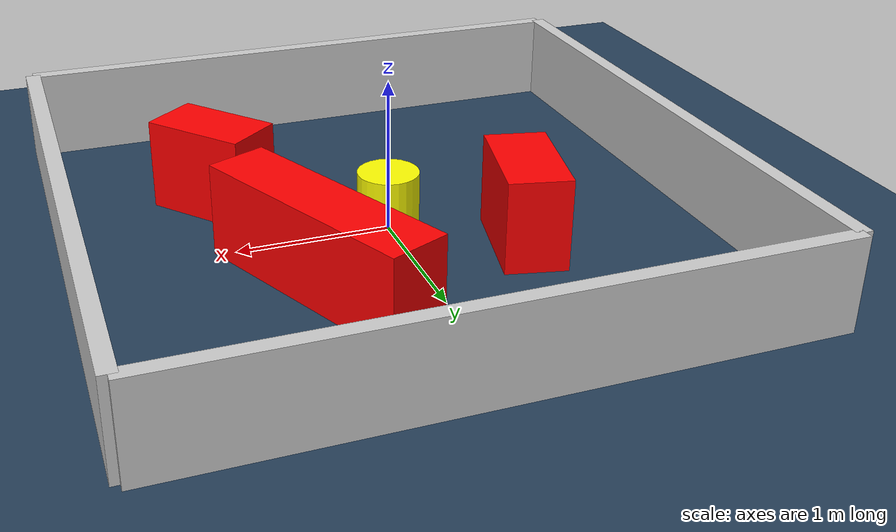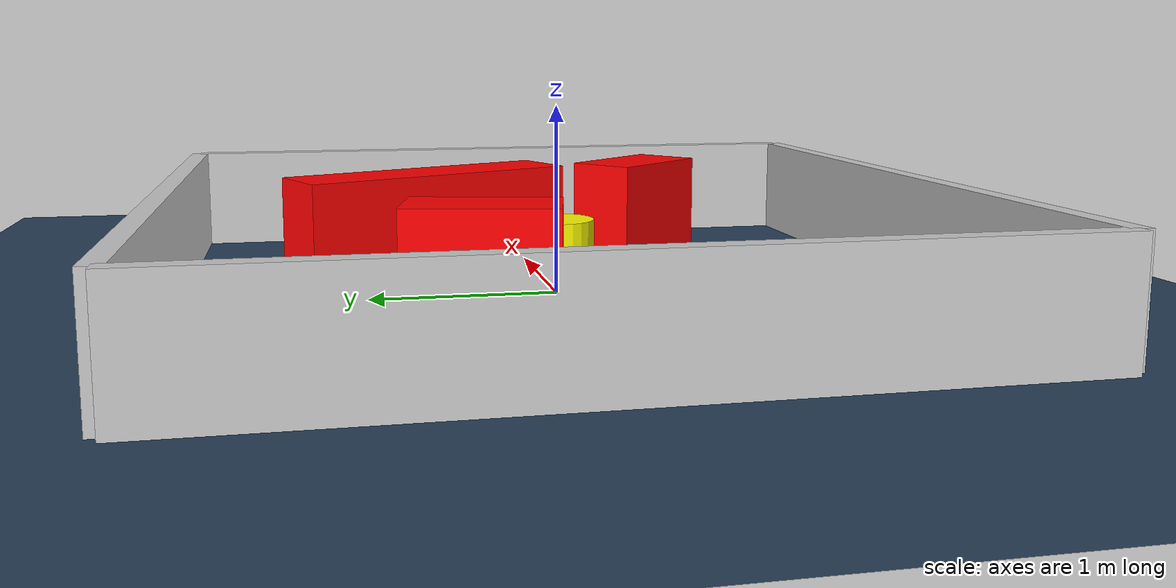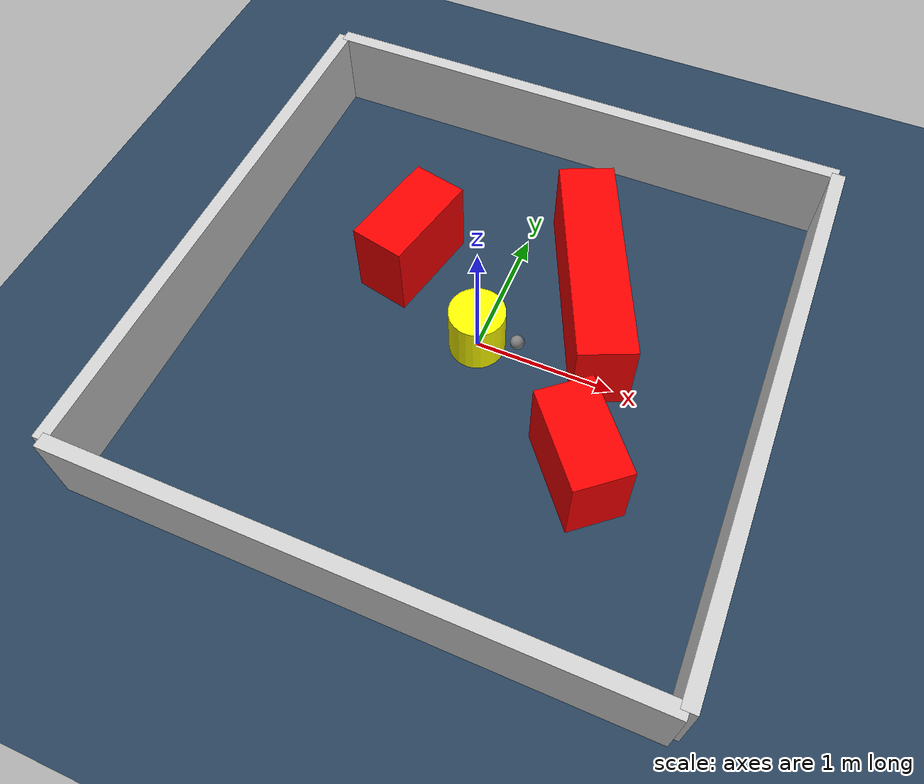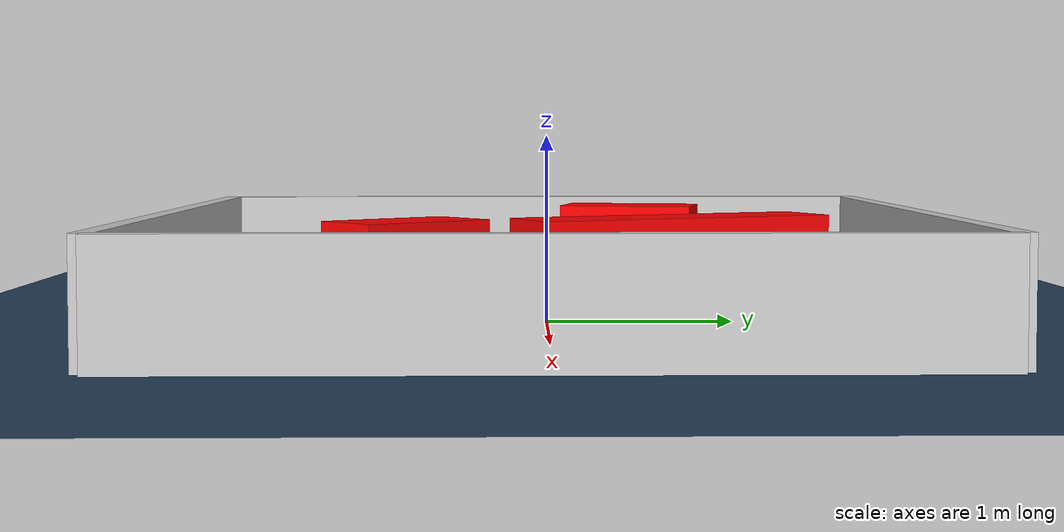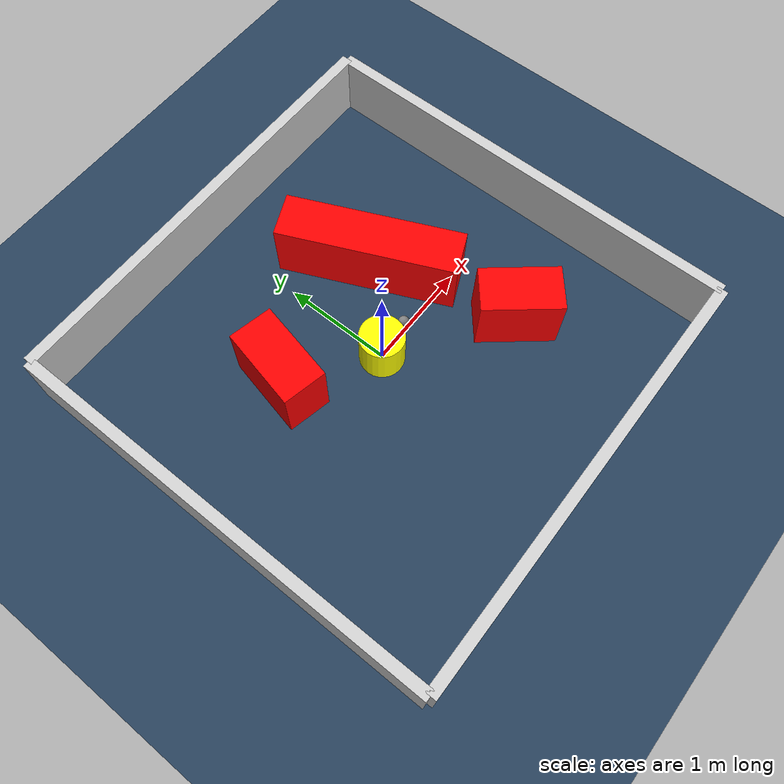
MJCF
<?xml version="1.0" ?>
<mujoco model="generated_environment">
  <option timestep="0.01" integrator="RK4" cone="elliptic"/>
  <default>
    <geom density="1"/>
  </default>
  <asset>
    <texture builtin="gradient" height="3072" rgb1="0.3 0.5 0.7" rgb2="0 0 0" type="skybox" width="512"/>
    <texture builtin="checker" height="300" mark="edge" markrgb="0.8 0.8 0.8" name="groundplane" rgb1="0.2 0.3 0.4" rgb2="0.1 0.2 0.3" type="2d" width="300"/>
    <material name="groundplane" reflectance="0.2" texrepeat="5 5" texture="groundplane" texuniform="true"/>
    <material name="robot" rgba="0.0 1.0 0.0 1"/>
  </asset>
  <worldbody>
    <light dir="0 0 -1" directional="true" pos="0 0 1.5"/>
    <geom condim="4" friction="1.0 0.005 0.001" material="groundplane" name="floor" size="0 0 0.05" type="plane"/>
    <body name="walls">
      <geom name="wall_1" condim="4" pos="-2.0 0.0 0.3" rgba="0.800000011920929 0.800000011920929 0.800000011920929 1.0" size="0.05 2.0 0.3" type="box"/>
      <geom name="wall_2" condim="4" pos="2.0 0.0 0.3" rgba="0.800000011920929 0.800000011920929 0.800000011920929 1.0" size="0.05 2.0 0.3" type="box"/>
      <geom name="wall_3" condim="4" pos="0.0 -2.0 0.3" rgba="0.800000011920929 0.800000011920929 0.800000011920929 1.0" size="2.0 0.05 0.3" type="box"/>
      <geom name="wall_4" condim="4" pos="0.0 2.0 0.3" rgba="0.800000011920929 0.800000011920929 0.800000011920929 1.0" size="2.0 0.05 0.3" type="box"/>
    </body>
    <body name="robot">
      <joint name="joint_x" type="slide" pos="0 0 0" axis="1 0 0"/>
      <joint name="joint_y" type="slide" pos="0 0 0" axis="0 1 0"/>
      <geom name="robot" type="sphere" pos="0.3 0.0 0.2" size="0.05" mass="5." friction="1.0 0.005 0.0001" condim="4" rgba="0.5 0.5 0.5 1.0"/>
      <site name="sensor_ball"/>
    </body>
    <body name="obstacle_movable_1">
      <geom name="obstacle_movable_1" condim="4" pos="0.0 0.0 0.2" euler="0 0 0.0" friction="1.0 0.005 0.001" rgba="1.0 1.0 0.0 1.0" size="0.2 0.2 0.0" type="cylinder" mass="0.1"/>
      <joint type="free"/>
    </body>
    <body name="obstacle_2_static">
      <geom name="obstacle_2_static" condim="4" pos="0.9825310569214614 -0.69205703961098 0.3" euler="0 0 129.60014880083833" friction="1.0 0.005 0.001" rgba="1 0 0 1" size="0.35357145623654174 0.2 0.3" type="box"/>
    </body>
    <body name="obstacle_3_static">
      <geom name="obstacle_3_static" condim="4" pos="0.6224466180918478 0.6204532130779212 0.3" euler="0 0 293.9752249814299" friction="1.0 0.005 0.001" rgba="1 0 0 1" size="0.8029673329730753 0.2 0.3" type="box"/>
    </body>
    <body name="obstacle_4_static">
      <geom name="obstacle_4_static" condim="4" pos="-0.7267809862156821 0.49322767226936004 0.3" euler="0 0 77.56095763474335" friction="1.0 0.005 0.001" rgba="1 0 0 1" size="0.37236581875990016 0.2 0.3" type="box"/>
    </body>
  </worldbody>
  <actuator>
    <motor name="actuator_x" joint="joint_x" gear="1" ctrlrange="-1 1"/>
    <motor name="actuator_y" joint="joint_y" gear="1" ctrlrange="-1 1"/>
  </actuator>
</mujoco>
